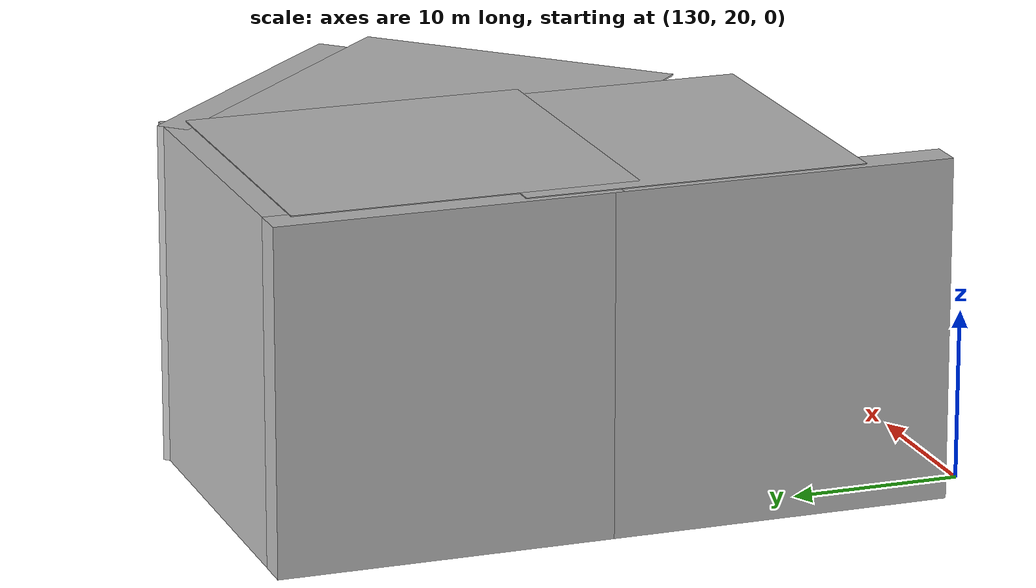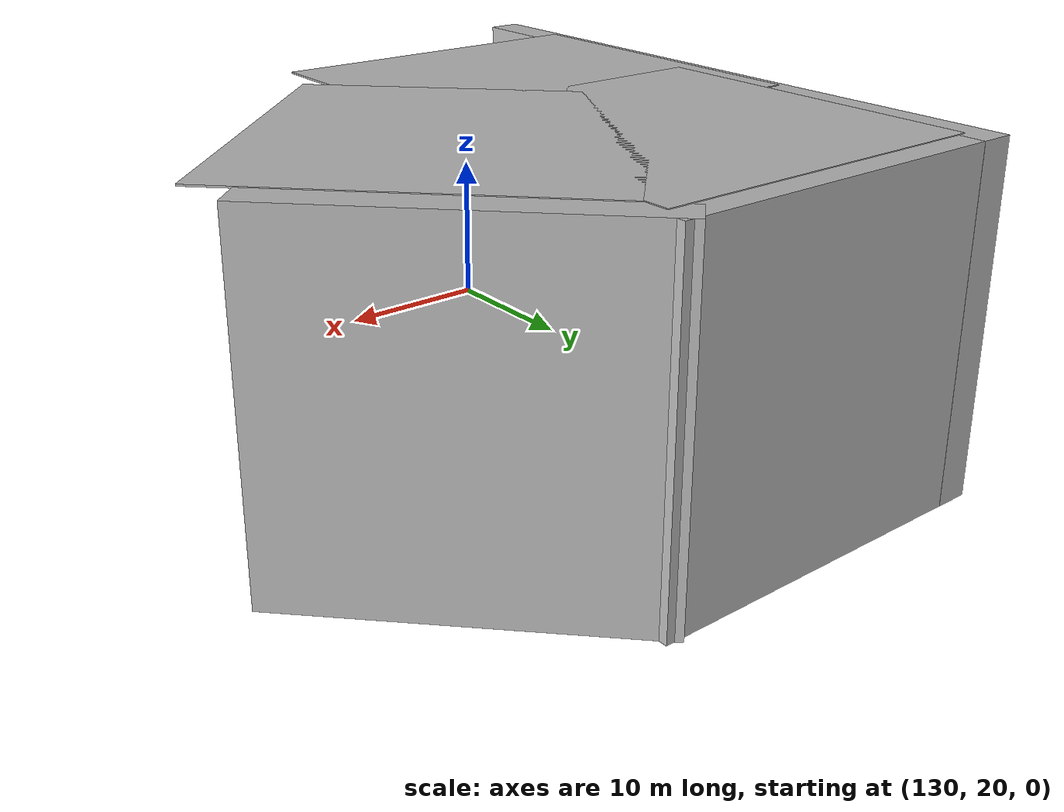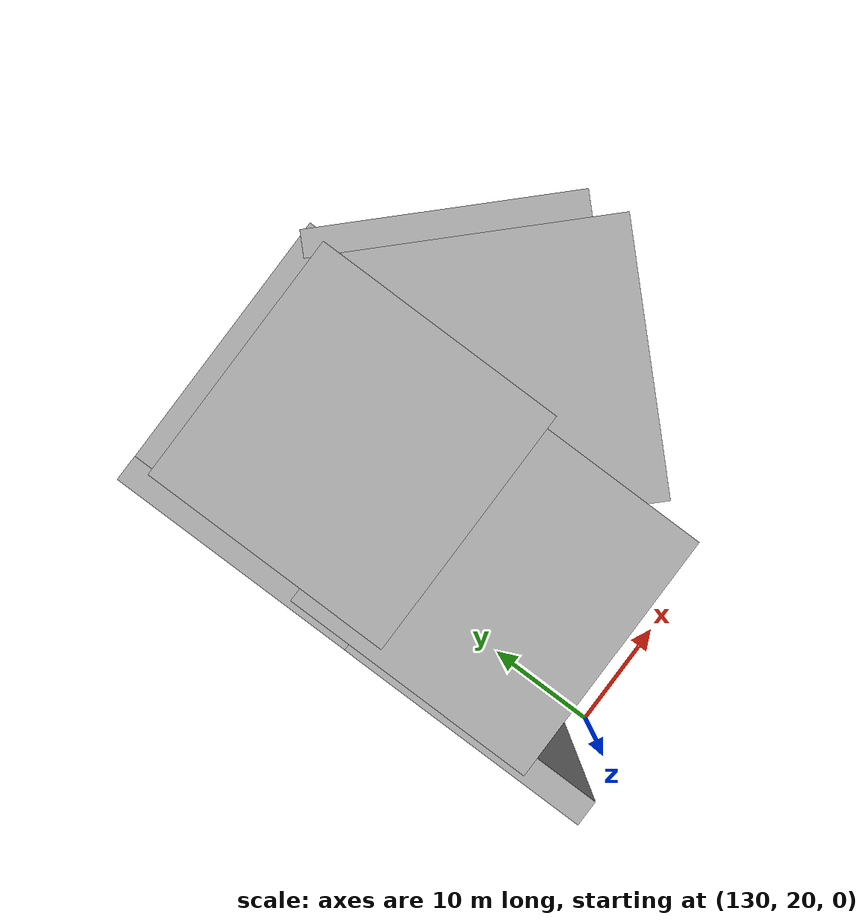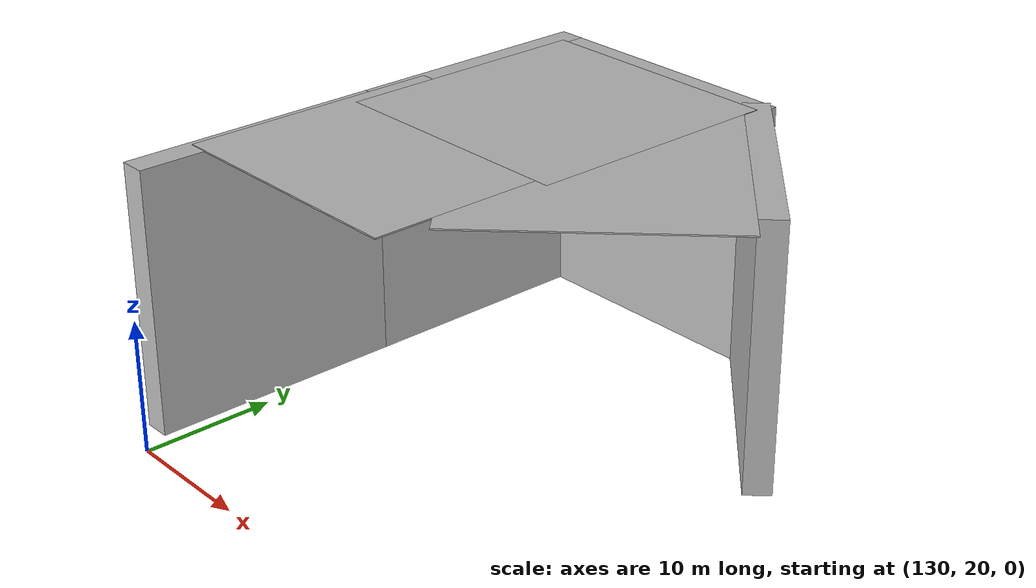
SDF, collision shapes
<?xml version='1.0'?>
<sdf version='1.7'>
  <model name='race_1_010'>
    <link name='link_clone_18_clone_2'>
      <self_collide>0</self_collide>
      <enable_wind>0</enable_wind>
      <kinematic>0</kinematic>
      <pose>154.565 54 10 1.5708 3e-06 -0.785398</pose>
      <visual name='visual'>
        <cast_shadows>1</cast_shadows>
        <transparency>0.6</transparency>
        <geometry>
          <box>
            <size>20 20 2</size>
          </box>
        </geometry>
        <material>
          <script>
            <uri>model://new_wall/materials/scripts</uri>
            <uri>model://new_wall/materials/textures/</uri>
            <name>NewWall/Image</name>
          </script>
          <shader type='pixel'/>
        </material>
        <pose>0 0 0 0 -0 0</pose>
      </visual>
      <collision name='collision'>
        <laser_retro>0</laser_retro>
        <max_contacts>10</max_contacts>
        <pose>0 0 0 0 -0 0</pose>
        <geometry>
          <box>
            <size>20 20 2</size>
          </box>
        </geometry>
        <surface>
          <friction>
            <ode>
              <mu>1</mu>
              <mu2>1</mu2>
              <fdir1>0 0 0</fdir1>
              <slip1>0</slip1>
              <slip2>0</slip2>
            </ode>
            <torsional>
              <coefficient>1</coefficient>
              <patch_radius>0</patch_radius>
              <surface_radius>0</surface_radius>
              <use_patch_radius>1</use_patch_radius>
              <ode>
                <slip>0</slip>
              </ode>
            </torsional>
          </friction>
          <bounce>
            <restitution_coefficient>0</restitution_coefficient>
            <threshold>1e+06</threshold>
          </bounce>
          <contact>
            <collide_without_contact>0</collide_without_contact>
            <collide_without_contact_bitmask>1</collide_without_contact_bitmask>
            <collide_bitmask>1</collide_bitmask>
            <ode>
              <soft_cfm>0</soft_cfm>
              <soft_erp>0.2</soft_erp>
              <kp>1e+13</kp>
              <kd>1</kd>
              <max_vel>0.01</max_vel>
              <min_depth>0</min_depth>
            </ode>
            <bullet>
              <split_impulse>1</split_impulse>
              <split_impulse_penetration_threshold>-0.01</split_impulse_penetration_threshold>
              <soft_cfm>0</soft_cfm>
              <soft_erp>0.2</soft_erp>
              <kp>1e+13</kp>
              <kd>1</kd>
            </bullet>
          </contact>
        </surface>
      </collision>
    </link>
    <link name='link_clone_19'>
      <self_collide>0</self_collide>
      <enable_wind>0</enable_wind>
      <kinematic>0</kinematic>
      <pose>139 60.4789 10 1.5708 -0 0</pose>
      <visual name='visual'>
        <cast_shadows>1</cast_shadows>
        <transparency>0.6</transparency>
        <geometry>
          <box>
            <size>20 20 2</size>
          </box>
        </geometry>
        <material>
          <script>
            <uri>model://new_wall/materials/scripts</uri>
            <uri>model://new_wall/materials/textures/</uri>
            <name>NewWall/Image</name>
          </script>
          <shader type='pixel'/>
        </material>
        <pose>0 0 0 0 -0 0</pose>
      </visual>
      <collision name='collision'>
        <laser_retro>0</laser_retro>
        <max_contacts>10</max_contacts>
        <pose>0 0 0 0 -0 0</pose>
        <geometry>
          <box>
            <size>20 20 2</size>
          </box>
        </geometry>
        <surface>
          <friction>
            <ode>
              <mu>1</mu>
              <mu2>1</mu2>
              <fdir1>0 0 0</fdir1>
              <slip1>0</slip1>
              <slip2>0</slip2>
            </ode>
            <torsional>
              <coefficient>1</coefficient>
              <patch_radius>0</patch_radius>
              <surface_radius>0</surface_radius>
              <use_patch_radius>1</use_patch_radius>
              <ode>
                <slip>0</slip>
              </ode>
            </torsional>
          </friction>
          <bounce>
            <restitution_coefficient>0</restitution_coefficient>
            <threshold>1e+06</threshold>
          </bounce>
          <contact>
            <collide_without_contact>0</collide_without_contact>
            <collide_without_contact_bitmask>1</collide_without_contact_bitmask>
            <collide_bitmask>1</collide_bitmask>
            <ode>
              <soft_cfm>0</soft_cfm>
              <soft_erp>0.2</soft_erp>
              <kp>1e+13</kp>
              <kd>1</kd>
              <max_vel>0.01</max_vel>
              <min_depth>0</min_depth>
            </ode>
            <bullet>
              <split_impulse>1</split_impulse>
              <split_impulse_penetration_threshold>-0.01</split_impulse_penetration_threshold>
              <soft_cfm>0</soft_cfm>
              <soft_erp>0.2</soft_erp>
              <kp>1e+13</kp>
              <kd>1</kd>
            </bullet>
          </contact>
        </surface>
      </collision>
    </link>
    <link name='link_clone_3_clone_10'>
      <self_collide>0</self_collide>
      <enable_wind>0</enable_wind>
      <kinematic>0</kinematic>
      <pose>128 32 10 1.5708 -0 1.5708</pose>
      <visual name='visual'>
        <cast_shadows>1</cast_shadows>
        <transparency>0.6</transparency>
        <geometry>
          <box>
            <size>20 20 2</size>
          </box>
        </geometry>
        <material>
          <script>
            <uri>model://new_wall/materials/scripts</uri>
            <uri>model://new_wall/materials/textures/</uri>
            <name>NewWall/Image</name>
          </script>
          <shader type='pixel'/>
        </material>
        <pose>0 0 0 0 -0 0</pose>
      </visual>
      <collision name='collision'>
        <laser_retro>0</laser_retro>
        <max_contacts>10</max_contacts>
        <pose>0 0 0 0 -0 0</pose>
        <geometry>
          <box>
            <size>20 20 2</size>
          </box>
        </geometry>
        <surface>
          <friction>
            <ode>
              <mu>1</mu>
              <mu2>1</mu2>
              <fdir1>0 0 0</fdir1>
              <slip1>0</slip1>
              <slip2>0</slip2>
            </ode>
            <torsional>
              <coefficient>1</coefficient>
              <patch_radius>0</patch_radius>
              <surface_radius>0</surface_radius>
              <use_patch_radius>1</use_patch_radius>
              <ode>
                <slip>0</slip>
              </ode>
            </torsional>
          </friction>
          <bounce>
            <restitution_coefficient>0</restitution_coefficient>
            <threshold>1e+06</threshold>
          </bounce>
          <contact>
            <collide_without_contact>0</collide_without_contact>
            <collide_without_contact_bitmask>1</collide_without_contact_bitmask>
            <collide_bitmask>1</collide_bitmask>
            <ode>
              <soft_cfm>0</soft_cfm>
              <soft_erp>0.2</soft_erp>
              <kp>1e+13</kp>
              <kd>1</kd>
              <max_vel>0.01</max_vel>
              <min_depth>0</min_depth>
            </ode>
            <bullet>
              <split_impulse>1</split_impulse>
              <split_impulse_penetration_threshold>-0.01</split_impulse_penetration_threshold>
              <soft_cfm>0</soft_cfm>
              <soft_erp>0.2</soft_erp>
              <kp>1e+13</kp>
              <kd>1</kd>
            </bullet>
          </contact>
        </surface>
      </collision>
    </link>
    <link name='link_clone_3_clone_9'>
      <self_collide>0</self_collide>
      <enable_wind>0</enable_wind>
      <kinematic>0</kinematic>
      <pose>128 51.4892 10 1.5708 -0 1.5708</pose>
      <visual name='visual'>
        <cast_shadows>1</cast_shadows>
        <transparency>0.6</transparency>
        <geometry>
          <box>
            <size>20 20 2</size>
          </box>
        </geometry>
        <material>
          <script>
            <uri>model://new_wall/materials/scripts</uri>
            <uri>model://new_wall/materials/textures/</uri>
            <name>NewWall/Image</name>
          </script>
          <shader type='pixel'/>
        </material>
        <pose>0 0 0 0 -0 0</pose>
      </visual>
      <collision name='collision'>
        <laser_retro>0</laser_retro>
        <max_contacts>10</max_contacts>
        <pose>0 0 0 0 -0 0</pose>
        <geometry>
          <box>
            <size>20 20 2</size>
          </box>
        </geometry>
        <surface>
          <friction>
            <ode>
              <mu>1</mu>
              <mu2>1</mu2>
              <fdir1>0 0 0</fdir1>
              <slip1>0</slip1>
              <slip2>0</slip2>
            </ode>
            <torsional>
              <coefficient>1</coefficient>
              <patch_radius>0</patch_radius>
              <surface_radius>0</surface_radius>
              <use_patch_radius>1</use_patch_radius>
              <ode>
                <slip>0</slip>
              </ode>
            </torsional>
          </friction>
          <bounce>
            <restitution_coefficient>0</restitution_coefficient>
            <threshold>1e+06</threshold>
          </bounce>
          <contact>
            <collide_without_contact>0</collide_without_contact>
            <collide_without_contact_bitmask>1</collide_without_contact_bitmask>
            <collide_bitmask>1</collide_bitmask>
            <ode>
              <soft_cfm>0</soft_cfm>
              <soft_erp>0.2</soft_erp>
              <kp>1e+13</kp>
              <kd>1</kd>
              <max_vel>0.01</max_vel>
              <min_depth>0</min_depth>
            </ode>
            <bullet>
              <split_impulse>1</split_impulse>
              <split_impulse_penetration_threshold>-0.01</split_impulse_penetration_threshold>
              <soft_cfm>0</soft_cfm>
              <soft_erp>0.2</soft_erp>
              <kp>1e+13</kp>
              <kd>1</kd>
            </bullet>
          </contact>
        </surface>
      </collision>
    </link>
    <model name='oneSidedPlane_2_clone_10'>
      <static>1</static>
      <link name='link'>
        <collision name='collision'>
          <geometry>
            <box>
              <size>20 20 0.1</size>
            </box>
          </geometry>
          <max_contacts>10</max_contacts>
          <surface>
            <contact>
              <ode/>
            </contact>
            <bounce/>
            <friction>
              <torsional>
                <ode/>
              </torsional>
              <ode/>
            </friction>
          </surface>
        </collision>
        <visual name='visual'>
          <cast_shadows>0</cast_shadows>
          <geometry>
            <mesh>
              <scale>1 1 1</scale>
              <uri>model://oneSidedPlane_2/wall1.obj</uri>
            </mesh>
          </geometry>
        </visual>
        <self_collide>0</self_collide>
        <enable_wind>0</enable_wind>
        <kinematic>0</kinematic>
      </link>
      <pose>138.535 50 20 0 -0 0</pose>
    </model>
    <model name='oneSidedPlane_2_clone_11'>
      <static>1</static>
      <link name='link'>
        <collision name='collision'>
          <geometry>
            <box>
              <size>20 20 0.1</size>
            </box>
          </geometry>
          <max_contacts>10</max_contacts>
          <surface>
            <contact>
              <ode/>
            </contact>
            <bounce/>
            <friction>
              <torsional>
                <ode/>
              </torsional>
              <ode/>
            </friction>
          </surface>
        </collision>
        <visual name='visual'>
          <cast_shadows>0</cast_shadows>
          <geometry>
            <mesh>
              <scale>1 1 1</scale>
              <uri>model://oneSidedPlane_2/wall1.obj</uri>
            </mesh>
          </geometry>
        </visual>
        <self_collide>0</self_collide>
        <enable_wind>0</enable_wind>
        <kinematic>0</kinematic>
      </link>
      <pose>137.487 37 20 0 -0 0</pose>
    </model>
    <model name='oneSidedPlane_2_clone_12_clone_0'>
      <static>1</static>
      <link name='link'>
        <collision name='collision'>
          <geometry>
            <box>
              <size>20 20 0.1</size>
            </box>
          </geometry>
          <max_contacts>10</max_contacts>
          <surface>
            <contact>
              <ode/>
            </contact>
            <bounce/>
            <friction>
              <torsional>
                <ode/>
              </torsional>
              <ode/>
            </friction>
          </surface>
        </collision>
        <visual name='visual'>
          <cast_shadows>0</cast_shadows>
          <geometry>
            <mesh>
              <scale>1 1 1</scale>
              <uri>model://oneSidedPlane_2/wall1.obj</uri>
            </mesh>
          </geometry>
        </visual>
        <self_collide>0</self_collide>
        <enable_wind>0</enable_wind>
        <kinematic>0</kinematic>
      </link>
      <pose>148.595 44.4476 20 0 -0 0.785398</pose>
    </model>
    <static>1</static>
    <allow_auto_disable>1</allow_auto_disable>
  </model>
</sdf>
